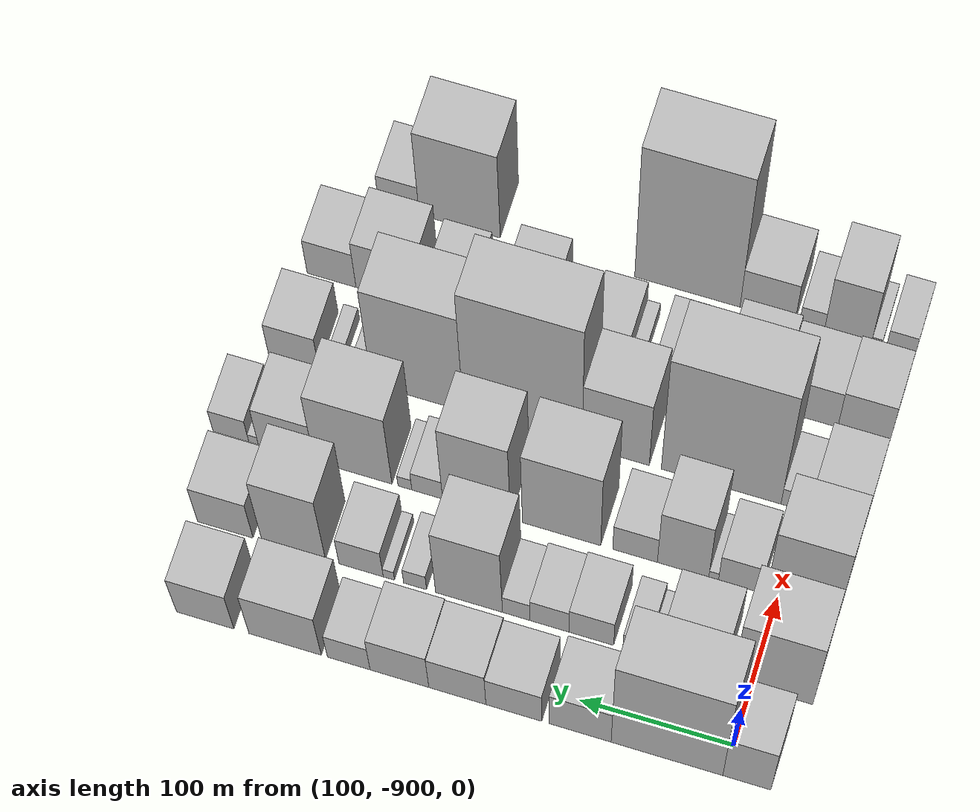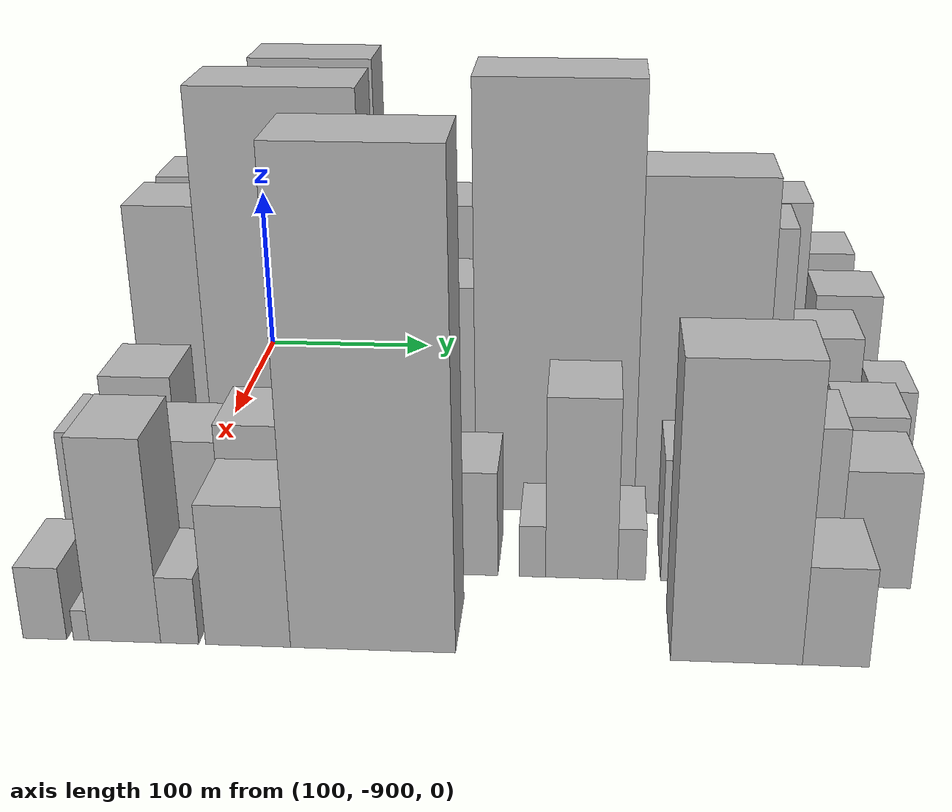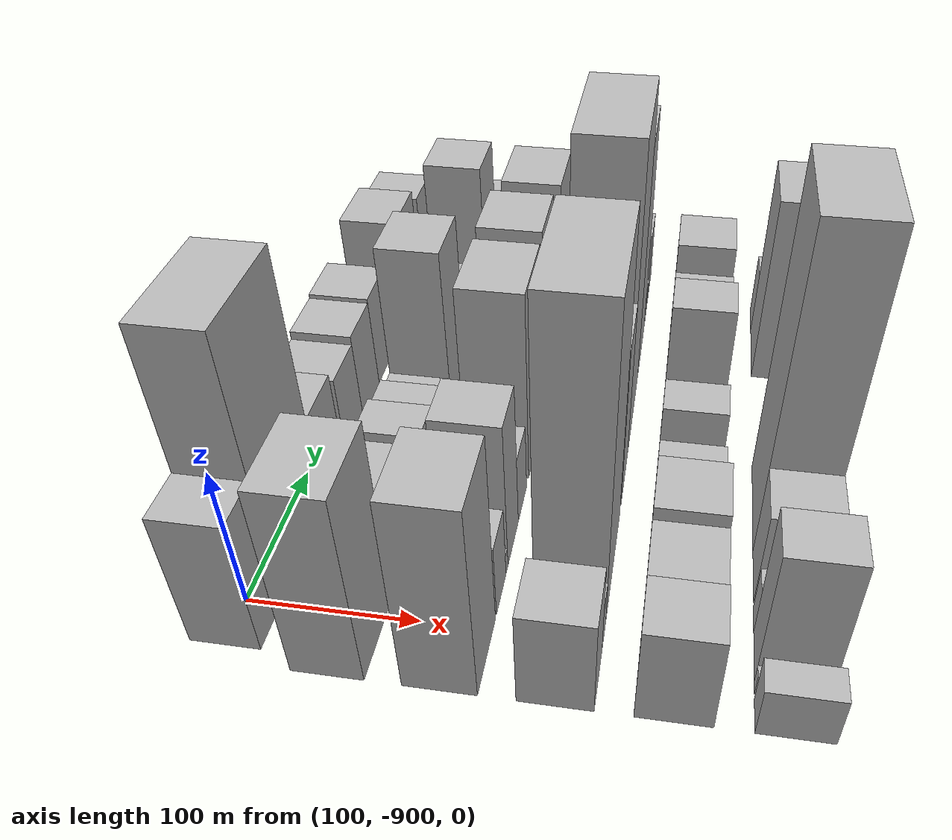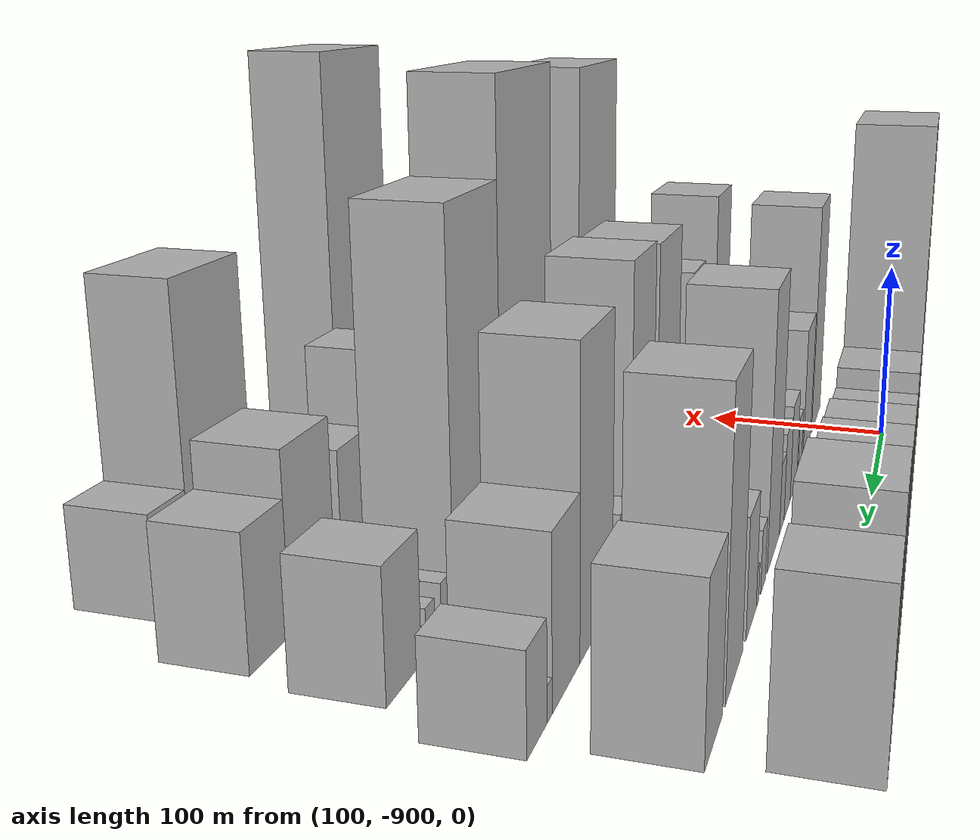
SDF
<sdf version="1.6">
 <world name="default">
  <model name="building_1">
   <static>1</static>
   <pose>100.0000 -914.4034 0 0.000000 0.000000 0.000000</pose>
   <link name="link">
    <pose>0 0 48.00 0 0 0</pose>
    <collision name="collision"><geometry><box><size>40.0000 31.1931 96.0000</size></box></geometry></collision>
    <visual name="visual">
     <cast_shadows>0</cast_shadows>
     <geometry><box><size>40.0000 31.1931 96.0000</size></box></geometry>
     <material>
      <script>
       <uri>model://HANNAS_wall/materials/scripts</uri>
       <uri>model://HANNAS_wall/materials/textures</uri>
       <name>vrc/HANNAS_wall</name>
      </script>
     </material>
    </visual>
   </link>
  </model>
  <model name="building_2">
   <static>1</static>
   <pose>100.0000 -862.4962 0 0.000000 0.000000 0.000000</pose>
   <link name="link">
    <pose>0 0 94.50 0 0 0</pose>
    <collision name="collision"><geometry><box><size>40.0000 72.6214 189.0000</size></box></geometry></collision>
    <visual name="visual">
     <cast_shadows>0</cast_shadows>
     <geometry><box><size>40.0000 72.6214 189.0000</size></box></geometry>
     <material>
      <script>
       <uri>model://HANNAS_wall/materials/scripts</uri>
       <uri>model://HANNAS_wall/materials/textures</uri>
       <name>vrc/HANNAS_wall</name>
      </script>
     </material>
    </visual>
   </link>
  </model>
  <model name="building_3">
   <static>1</static>
   <pose>100.0000 -806.0495 0 0.000000 0.000000 0.000000</pose>
   <link name="link">
    <pose>0 0 36.00 0 0 0</pose>
    <collision name="collision"><geometry><box><size>40.0000 40.2719 72.0000</size></box></geometry></collision>
    <visual name="visual">
     <cast_shadows>0</cast_shadows>
     <geometry><box><size>40.0000 40.2719 72.0000</size></box></geometry>
     <material>
      <script>
       <uri>model://HANNAS_wall/materials/scripts</uri>
       <uri>model://HANNAS_wall/materials/textures</uri>
       <name>vrc/HANNAS_wall</name>
      </script>
     </material>
    </visual>
   </link>
  </model>
  <model name="building_4">
   <static>1</static>
   <pose>100.0000 -762.6138 0 0.000000 0.000000 0.000000</pose>
   <link name="link">
    <pose>0 0 31.50 0 0 0</pose>
    <collision name="collision"><geometry><box><size>40.0000 36.5996 63.0000</size></box></geometry></collision>
    <visual name="visual">
     <cast_shadows>0</cast_shadows>
     <geometry><box><size>40.0000 36.5996 63.0000</size></box></geometry>
     <material>
      <script>
       <uri>model://HANNAS_wall/materials/scripts</uri>
       <uri>model://HANNAS_wall/materials/textures</uri>
       <name>vrc/HANNAS_wall</name>
      </script>
     </material>
    </visual>
   </link>
  </model>
  <model name="building_5">
   <static>1</static>
   <pose>100.0000 -725.5601 0 0.000000 0.000000 0.000000</pose>
   <link name="link">
    <pose>0 0 34.50 0 0 0</pose>
    <collision name="collision"><geometry><box><size>40.0000 37.5077 69.0000</size></box></geometry></collision>
    <visual name="visual">
     <cast_shadows>0</cast_shadows>
     <geometry><box><size>40.0000 37.5077 69.0000</size></box></geometry>
     <material>
      <script>
       <uri>model://HANNAS_wall/materials/scripts</uri>
       <uri>model://HANNAS_wall/materials/textures</uri>
       <name>vrc/HANNAS_wall</name>
      </script>
     </material>
    </visual>
   </link>
  </model>
  <model name="building_6">
   <static>1</static>
   <pose>100.0000 -687.4740 0 0.000000 0.000000 0.000000</pose>
   <link name="link">
    <pose>0 0 36.00 0 0 0</pose>
    <collision name="collision"><geometry><box><size>40.0000 38.6645 72.0000</size></box></geometry></collision>
    <visual name="visual">
     <cast_shadows>0</cast_shadows>
     <geometry><box><size>40.0000 38.6645 72.0000</size></box></geometry>
     <material>
      <script>
       <uri>model://HANNAS_wall/materials/scripts</uri>
       <uri>model://HANNAS_wall/materials/textures</uri>
       <name>vrc/HANNAS_wall</name>
      </script>
     </material>
    </visual>
   </link>
  </model>
  <model name="building_7">
   <static>1</static>
   <pose>100.0000 -654.0015 0 0.000000 0.000000 0.000000</pose>
   <link name="link">
    <pose>0 0 25.50 0 0 0</pose>
    <collision name="collision"><geometry><box><size>40.0000 28.2803 51.0000</size></box></geometry></collision>
    <visual name="visual">
     <cast_shadows>0</cast_shadows>
     <geometry><box><size>40.0000 28.2803 51.0000</size></box></geometry>
     <material>
      <script>
       <uri>model://HANNAS_wall/materials/scripts</uri>
       <uri>model://HANNAS_wall/materials/textures</uri>
       <name>vrc/HANNAS_wall</name>
      </script>
     </material>
    </visual>
   </link>
  </model>
  <model name="building_8">
   <static>1</static>
   <pose>100.0000 -611.8724 0 0.000000 0.000000 0.000000</pose>
   <link name="link">
    <pose>0 0 43.50 0 0 0</pose>
    <collision name="collision"><geometry><box><size>40.0000 47.9779 87.0000</size></box></geometry></collision>
    <visual name="visual">
     <cast_shadows>0</cast_shadows>
     <geometry><box><size>40.0000 47.9779 87.0000</size></box></geometry>
     <material>
      <script>
       <uri>model://HANNAS_wall/materials/scripts</uri>
       <uri>model://HANNAS_wall/materials/textures</uri>
       <name>vrc/HANNAS_wall</name>
      </script>
     </material>
    </visual>
   </link>
  </model>
  <model name="building_9">
   <static>1</static>
   <pose>100.0000 -558.8258 0 0.000000 0.000000 0.000000</pose>
   <link name="link">
    <pose>0 0 37.50 0 0 0</pose>
    <collision name="collision"><geometry><box><size>40.0000 38.1154 75.0000</size></box></geometry></collision>
    <visual name="visual">
     <cast_shadows>0</cast_shadows>
     <geometry><box><size>40.0000 38.1154 75.0000</size></box></geometry>
     <material>
      <script>
       <uri>model://HANNAS_wall/materials/scripts</uri>
       <uri>model://HANNAS_wall/materials/textures</uri>
       <name>vrc/HANNAS_wall</name>
      </script>
     </material>
    </visual>
   </link>
  </model>
  <model name="building_55">
   <static>1</static>
   <pose>160.0000 -914.0435 0 0.000000 0.000000 0.000000</pose>
   <link name="link">
    <pose>0 0 67.50 0 0 0</pose>
    <collision name="collision"><geometry><box><size>40.0000 51.9129 135.0000</size></box></geometry></collision>
    <visual name="visual">
     <cast_shadows>0</cast_shadows>
     <geometry><box><size>40.0000 51.9129 135.0000</size></box></geometry>
     <material>
      <script>
       <uri>model://HANNAS_wall/materials/scripts</uri>
       <uri>model://HANNAS_wall/materials/textures</uri>
       <name>vrc/HANNAS_wall</name>
      </script>
     </material>
    </visual>
   </link>
  </model>
  <model name="building_56">
   <static>1</static>
   <pose>160.0000 -861.3573 0 0.000000 0.000000 0.000000</pose>
   <link name="link">
    <pose>0 0 37.50 0 0 0</pose>
    <collision name="collision"><geometry><box><size>40.0000 41.4595 75.0000</size></box></geometry></collision>
    <visual name="visual">
     <cast_shadows>0</cast_shadows>
     <geometry><box><size>40.0000 41.4595 75.0000</size></box></geometry>
     <material>
      <script>
       <uri>model://HANNAS_wall/materials/scripts</uri>
       <uri>model://HANNAS_wall/materials/textures</uri>
       <name>vrc/HANNAS_wall</name>
      </script>
     </material>
    </visual>
   </link>
  </model>
  <model name="building_57">
   <static>1</static>
   <pose>160.0000 -836.5310 0 0.000000 0.000000 0.000000</pose>
   <link name="link">
    <pose>0 0 9.00 0 0 0</pose>
    <collision name="collision"><geometry><box><size>40.0000 8.1931 18.0000</size></box></geometry></collision>
    <visual name="visual">
     <cast_shadows>0</cast_shadows>
     <geometry><box><size>40.0000 8.1931 18.0000</size></box></geometry>
     <material>
      <script>
       <uri>model://HANNAS_wall/materials/scripts</uri>
       <uri>model://HANNAS_wall/materials/textures</uri>
       <name>vrc/HANNAS_wall</name>
      </script>
     </material>
    </visual>
   </link>
  </model>
  <model name="building_58">
   <static>1</static>
   <pose>160.0000 -824.1081 0 0.000000 0.000000 0.000000</pose>
   <link name="link">
    <pose>0 0 16.50 0 0 0</pose>
    <collision name="collision"><geometry><box><size>40.0000 16.6528 33.0000</size></box></geometry></collision>
    <visual name="visual">
     <cast_shadows>0</cast_shadows>
     <geometry><box><size>40.0000 16.6528 33.0000</size></box></geometry>
     <material>
      <script>
       <uri>model://HANNAS_wall/materials/scripts</uri>
       <uri>model://HANNAS_wall/materials/textures</uri>
       <name>vrc/HANNAS_wall</name>
      </script>
     </material>
    </visual>
   </link>
  </model>
  <model name="building_59">
   <static>1</static>
   <pose>160.0000 -795.0810 0 0.000000 0.000000 0.000000</pose>
   <link name="link">
    <pose>0 0 25.50 0 0 0</pose>
    <collision name="collision"><geometry><box><size>40.0000 29.4013 51.0000</size></box></geometry></collision>
    <visual name="visual">
     <cast_shadows>0</cast_shadows>
     <geometry><box><size>40.0000 29.4013 51.0000</size></box></geometry>
     <material>
      <script>
       <uri>model://HANNAS_wall/materials/scripts</uri>
       <uri>model://HANNAS_wall/materials/textures</uri>
       <name>vrc/HANNAS_wall</name>
      </script>
     </material>
    </visual>
   </link>
  </model>
  <model name="building_60">
   <static>1</static>
   <pose>160.0000 -767.4898 0 0.000000 0.000000 0.000000</pose>
   <link name="link">
    <pose>0 0 22.50 0 0 0</pose>
    <collision name="collision"><geometry><box><size>40.0000 25.7810 45.0000</size></box></geometry></collision>
    <visual name="visual">
     <cast_shadows>0</cast_shadows>
     <geometry><box><size>40.0000 25.7810 45.0000</size></box></geometry>
     <material>
      <script>
       <uri>model://HANNAS_wall/materials/scripts</uri>
       <uri>model://HANNAS_wall/materials/textures</uri>
       <name>vrc/HANNAS_wall</name>
      </script>
     </material>
    </visual>
   </link>
  </model>
  <model name="building_61">
   <static>1</static>
   <pose>160.0000 -745.5431 0 0.000000 0.000000 0.000000</pose>
   <link name="link">
    <pose>0 0 18.00 0 0 0</pose>
    <collision name="collision"><geometry><box><size>40.0000 18.1123 36.0000</size></box></geometry></collision>
    <visual name="visual">
     <cast_shadows>0</cast_shadows>
     <geometry><box><size>40.0000 18.1123 36.0000</size></box></geometry>
     <material>
      <script>
       <uri>model://HANNAS_wall/materials/scripts</uri>
       <uri>model://HANNAS_wall/materials/textures</uri>
       <name>vrc/HANNAS_wall</name>
      </script>
     </material>
    </visual>
   </link>
  </model>
  <model name="building_62">
   <static>1</static>
   <pose>160.0000 -714.3641 0 0.000000 0.000000 0.000000</pose>
   <link name="link">
    <pose>0 0 66.00 0 0 0</pose>
    <collision name="collision"><geometry><box><size>40.0000 44.2459 132.0000</size></box></geometry></collision>
    <visual name="visual">
     <cast_shadows>0</cast_shadows>
     <geometry><box><size>40.0000 44.2459 132.0000</size></box></geometry>
     <material>
      <script>
       <uri>model://HANNAS_wall/materials/scripts</uri>
       <uri>model://HANNAS_wall/materials/textures</uri>
       <name>vrc/HANNAS_wall</name>
      </script>
     </material>
    </visual>
   </link>
  </model>
  <model name="building_63">
   <static>1</static>
   <pose>160.0000 -678.5978 0 0.000000 0.000000 0.000000</pose>
   <link name="link">
    <pose>0 0 15.00 0 0 0</pose>
    <collision name="collision"><geometry><box><size>40.0000 15.2867 30.0000</size></box></geometry></collision>
    <visual name="visual">
     <cast_shadows>0</cast_shadows>
     <geometry><box><size>40.0000 15.2867 30.0000</size></box></geometry>
     <material>
      <script>
       <uri>model://HANNAS_wall/materials/scripts</uri>
       <uri>model://HANNAS_wall/materials/textures</uri>
       <name>vrc/HANNAS_wall</name>
      </script>
     </material>
    </visual>
   </link>
  </model>
  <model name="building_64">
   <static>1</static>
   <pose>160.0000 -661.1857 0 0.000000 0.000000 0.000000</pose>
   <link name="link">
    <pose>0 0 9.00 0 0 0</pose>
    <collision name="collision"><geometry><box><size>40.0000 7.5375 18.0000</size></box></geometry></collision>
    <visual name="visual">
     <cast_shadows>0</cast_shadows>
     <geometry><box><size>40.0000 7.5375 18.0000</size></box></geometry>
     <material>
      <script>
       <uri>model://HANNAS_wall/materials/scripts</uri>
       <uri>model://HANNAS_wall/materials/textures</uri>
       <name>vrc/HANNAS_wall</name>
      </script>
     </material>
    </visual>
   </link>
  </model>
  <model name="building_65">
   <static>1</static>
   <pose>160.0000 -642.7018 0 0.000000 0.000000 0.000000</pose>
   <link name="link">
    <pose>0 0 27.00 0 0 0</pose>
    <collision name="collision"><geometry><box><size>40.0000 29.4303 54.0000</size></box></geometry></collision>
    <visual name="visual">
     <cast_shadows>0</cast_shadows>
     <geometry><box><size>40.0000 29.4303 54.0000</size></box></geometry>
     <material>
      <script>
       <uri>model://HANNAS_wall/materials/scripts</uri>
       <uri>model://HANNAS_wall/materials/textures</uri>
       <name>vrc/HANNAS_wall</name>
      </script>
     </material>
    </visual>
   </link>
  </model>
  <model name="building_66">
   <static>1</static>
   <pose>160.0000 -597.7879 0 0.000000 0.000000 0.000000</pose>
   <link name="link">
    <pose>0 0 63.00 0 0 0</pose>
    <collision name="collision"><geometry><box><size>40.0000 42.3975 126.0000</size></box></geometry></collision>
    <visual name="visual">
     <cast_shadows>0</cast_shadows>
     <geometry><box><size>40.0000 42.3975 126.0000</size></box></geometry>
     <material>
      <script>
       <uri>model://HANNAS_wall/materials/scripts</uri>
       <uri>model://HANNAS_wall/materials/textures</uri>
       <name>vrc/HANNAS_wall</name>
      </script>
     </material>
    </visual>
   </link>
  </model>
  <model name="building_67">
   <static>1</static>
   <pose>160.0000 -552.0326 0 0.000000 0.000000 0.000000</pose>
   <link name="link">
    <pose>0 0 36.00 0 0 0</pose>
    <collision name="collision"><geometry><box><size>40.0000 37.1131 72.0000</size></box></geometry></collision>
    <visual name="visual">
     <cast_shadows>0</cast_shadows>
     <geometry><box><size>40.0000 37.1131 72.0000</size></box></geometry>
     <material>
      <script>
       <uri>model://HANNAS_wall/materials/scripts</uri>
       <uri>model://HANNAS_wall/materials/textures</uri>
       <name>vrc/HANNAS_wall</name>
      </script>
     </material>
    </visual>
   </link>
  </model>
  <model name="building_108">
   <static>1</static>
   <pose>220.0000 -916.1201 0 0.000000 0.000000 0.000000</pose>
   <link name="link">
    <pose>0 0 69.00 0 0 0</pose>
    <collision name="collision"><geometry><box><size>40.0000 47.7597 138.0000</size></box></geometry></collision>
    <visual name="visual">
     <cast_shadows>0</cast_shadows>
     <geometry><box><size>40.0000 47.7597 138.0000</size></box></geometry>
     <material>
      <script>
       <uri>model://HANNAS_wall/materials/scripts</uri>
       <uri>model://HANNAS_wall/materials/textures</uri>
       <name>vrc/HANNAS_wall</name>
      </script>
     </material>
    </visual>
   </link>
  </model>
  <model name="building_109">
   <static>1</static>
   <pose>220.0000 -875.0821 0 0.000000 0.000000 0.000000</pose>
   <link name="link">
    <pose>0 0 27.00 0 0 0</pose>
    <collision name="collision"><geometry><box><size>40.0000 28.3164 54.0000</size></box></geometry></collision>
    <visual name="visual">
     <cast_shadows>0</cast_shadows>
     <geometry><box><size>40.0000 28.3164 54.0000</size></box></geometry>
     <material>
      <script>
       <uri>model://HANNAS_wall/materials/scripts</uri>
       <uri>model://HANNAS_wall/materials/textures</uri>
       <name>vrc/HANNAS_wall</name>
      </script>
     </material>
    </visual>
   </link>
  </model>
  <model name="building_110">
   <static>1</static>
   <pose>220.0000 -857.7236 0 0.000000 0.000000 0.000000</pose>
   <link name="link">
    <pose>0 0 7.50 0 0 0</pose>
    <collision name="collision"><geometry><box><size>40.0000 6.4006 15.0000</size></box></geometry></collision>
    <visual name="visual">
     <cast_shadows>0</cast_shadows>
     <geometry><box><size>40.0000 6.4006 15.0000</size></box></geometry>
     <material>
      <script>
       <uri>model://HANNAS_wall/materials/scripts</uri>
       <uri>model://HANNAS_wall/materials/textures</uri>
       <name>vrc/HANNAS_wall</name>
      </script>
     </material>
    </visual>
   </link>
  </model>
  <model name="building_111">
   <static>1</static>
   <pose>220.0000 -837.5301 0 0.000000 0.000000 0.000000</pose>
   <link name="link">
    <pose>0 0 54.00 0 0 0</pose>
    <collision name="collision"><geometry><box><size>40.0000 33.9863 108.0000</size></box></geometry></collision>
    <visual name="visual">
     <cast_shadows>0</cast_shadows>
     <geometry><box><size>40.0000 33.9863 108.0000</size></box></geometry>
     <material>
      <script>
       <uri>model://HANNAS_wall/materials/scripts</uri>
       <uri>model://HANNAS_wall/materials/textures</uri>
       <name>vrc/HANNAS_wall</name>
      </script>
     </material>
    </visual>
   </link>
  </model>
  <model name="building_112">
   <static>1</static>
   <pose>220.0000 -805.7891 0 0.000000 0.000000 0.000000</pose>
   <link name="link">
    <pose>0 0 25.50 0 0 0</pose>
    <collision name="collision"><geometry><box><size>40.0000 29.4956 51.0000</size></box></geometry></collision>
    <visual name="visual">
     <cast_shadows>0</cast_shadows>
     <geometry><box><size>40.0000 29.4956 51.0000</size></box></geometry>
     <material>
      <script>
       <uri>model://HANNAS_wall/materials/scripts</uri>
       <uri>model://HANNAS_wall/materials/textures</uri>
       <name>vrc/HANNAS_wall</name>
      </script>
     </material>
    </visual>
   </link>
  </model>
  <model name="building_113">
   <static>1</static>
   <pose>220.0000 -757.0561 0 0.000000 0.000000 0.000000</pose>
   <link name="link">
    <pose>0 0 70.50 0 0 0</pose>
    <collision name="collision"><geometry><box><size>40.0000 51.9704 141.0000</size></box></geometry></collision>
    <visual name="visual">
     <cast_shadows>0</cast_shadows>
     <geometry><box><size>40.0000 51.9704 141.0000</size></box></geometry>
     <material>
      <script>
       <uri>model://HANNAS_wall/materials/scripts</uri>
       <uri>model://HANNAS_wall/materials/textures</uri>
       <name>vrc/HANNAS_wall</name>
      </script>
     </material>
    </visual>
   </link>
  </model>
  <model name="building_114">
   <static>1</static>
   <pose>220.0000 -700.4312 0 0.000000 0.000000 0.000000</pose>
   <link name="link">
    <pose>0 0 72.00 0 0 0</pose>
    <collision name="collision"><geometry><box><size>40.0000 45.2795 144.0000</size></box></geometry></collision>
    <visual name="visual">
     <cast_shadows>0</cast_shadows>
     <geometry><box><size>40.0000 45.2795 144.0000</size></box></geometry>
     <material>
      <script>
       <uri>model://HANNAS_wall/materials/scripts</uri>
       <uri>model://HANNAS_wall/materials/textures</uri>
       <name>vrc/HANNAS_wall</name>
      </script>
     </material>
    </visual>
   </link>
  </model>
  <model name="building_115">
   <static>1</static>
   <pose>220.0000 -667.5053 0 0.000000 0.000000 0.000000</pose>
   <link name="link">
    <pose>0 0 18.00 0 0 0</pose>
    <collision name="collision"><geometry><box><size>40.0000 20.5722 36.0000</size></box></geometry></collision>
    <visual name="visual">
     <cast_shadows>0</cast_shadows>
     <geometry><box><size>40.0000 20.5722 36.0000</size></box></geometry>
     <material>
      <script>
       <uri>model://HANNAS_wall/materials/scripts</uri>
       <uri>model://HANNAS_wall/materials/textures</uri>
       <name>vrc/HANNAS_wall</name>
      </script>
     </material>
    </visual>
   </link>
  </model>
  <model name="building_116">
   <static>1</static>
   <pose>220.0000 -652.5848 0 0.000000 0.000000 0.000000</pose>
   <link name="link">
    <pose>0 0 10.50 0 0 0</pose>
    <collision name="collision"><geometry><box><size>40.0000 9.2688 21.0000</size></box></geometry></collision>
    <visual name="visual">
     <cast_shadows>0</cast_shadows>
     <geometry><box><size>40.0000 9.2688 21.0000</size></box></geometry>
     <material>
      <script>
       <uri>model://HANNAS_wall/materials/scripts</uri>
       <uri>model://HANNAS_wall/materials/textures</uri>
       <name>vrc/HANNAS_wall</name>
      </script>
     </material>
    </visual>
   </link>
  </model>
  <model name="building_117">
   <static>1</static>
   <pose>220.0000 -617.8667 0 0.000000 0.000000 0.000000</pose>
   <link name="link">
    <pose>0 0 66.00 0 0 0</pose>
    <collision name="collision"><geometry><box><size>40.0000 52.1672 132.0000</size></box></geometry></collision>
    <visual name="visual">
     <cast_shadows>0</cast_shadows>
     <geometry><box><size>40.0000 52.1672 132.0000</size></box></geometry>
     <material>
      <script>
       <uri>model://HANNAS_wall/materials/scripts</uri>
       <uri>model://HANNAS_wall/materials/textures</uri>
       <name>vrc/HANNAS_wall</name>
      </script>
     </material>
    </visual>
   </link>
  </model>
  <model name="building_118">
   <static>1</static>
   <pose>220.0000 -572.9064 0 0.000000 0.000000 0.000000</pose>
   <link name="link">
    <pose>0 0 36.00 0 0 0</pose>
    <collision name="collision"><geometry><box><size>40.0000 37.7534 72.0000</size></box></geometry></collision>
    <visual name="visual">
     <cast_shadows>0</cast_shadows>
     <geometry><box><size>40.0000 37.7534 72.0000</size></box></geometry>
     <material>
      <script>
       <uri>model://HANNAS_wall/materials/scripts</uri>
       <uri>model://HANNAS_wall/materials/textures</uri>
       <name>vrc/HANNAS_wall</name>
      </script>
     </material>
    </visual>
   </link>
  </model>
  <model name="building_119">
   <static>1</static>
   <pose>220.0000 -550.8197 0 0.000000 0.000000 0.000000</pose>
   <link name="link">
    <pose>0 0 7.50 0 0 0</pose>
    <collision name="collision"><geometry><box><size>40.0000 6.4200 15.0000</size></box></geometry></collision>
    <visual name="visual">
     <cast_shadows>0</cast_shadows>
     <geometry><box><size>40.0000 6.4200 15.0000</size></box></geometry>
     <material>
      <script>
       <uri>model://HANNAS_wall/materials/scripts</uri>
       <uri>model://HANNAS_wall/materials/textures</uri>
       <name>vrc/HANNAS_wall</name>
      </script>
     </material>
    </visual>
   </link>
  </model>
  <model name="building_120">
   <static>1</static>
   <pose>220.0000 -535.5530 0 0.000000 0.000000 0.000000</pose>
   <link name="link">
    <pose>0 0 21.00 0 0 0</pose>
    <collision name="collision"><geometry><box><size>40.0000 24.1134 42.0000</size></box></geometry></collision>
    <visual name="visual">
     <cast_shadows>0</cast_shadows>
     <geometry><box><size>40.0000 24.1134 42.0000</size></box></geometry>
     <material>
      <script>
       <uri>model://HANNAS_wall/materials/scripts</uri>
       <uri>model://HANNAS_wall/materials/textures</uri>
       <name>vrc/HANNAS_wall</name>
      </script>
     </material>
    </visual>
   </link>
  </model>
  <model name="building_163">
   <static>1</static>
   <pose>280.0000 -921.9414 0 0.000000 0.000000 0.000000</pose>
   <link name="link">
    <pose>0 0 34.50 0 0 0</pose>
    <collision name="collision"><geometry><box><size>40.0000 36.1172 69.0000</size></box></geometry></collision>
    <visual name="visual">
     <cast_shadows>0</cast_shadows>
     <geometry><box><size>40.0000 36.1172 69.0000</size></box></geometry>
     <material>
      <script>
       <uri>model://HANNAS_wall/materials/scripts</uri>
       <uri>model://HANNAS_wall/materials/textures</uri>
       <name>vrc/HANNAS_wall</name>
      </script>
     </material>
    </visual>
   </link>
  </model>
  <model name="building_164">
   <static>1</static>
   <pose>280.0000 -894.3370 0 0.000000 0.000000 0.000000</pose>
   <link name="link">
    <pose>0 0 16.50 0 0 0</pose>
    <collision name="collision"><geometry><box><size>40.0000 19.0916 33.0000</size></box></geometry></collision>
    <visual name="visual">
     <cast_shadows>0</cast_shadows>
     <geometry><box><size>40.0000 19.0916 33.0000</size></box></geometry>
     <material>
      <script>
       <uri>model://HANNAS_wall/materials/scripts</uri>
       <uri>model://HANNAS_wall/materials/textures</uri>
       <name>vrc/HANNAS_wall</name>
      </script>
     </material>
    </visual>
   </link>
  </model>
  <model name="building_165">
   <static>1</static>
   <pose>280.0000 -845.0297 0 0.000000 0.000000 0.000000</pose>
   <link name="link">
    <pose>0 0 108.00 0 0 0</pose>
    <collision name="collision"><geometry><box><size>40.0000 79.5230 216.0000</size></box></geometry></collision>
    <visual name="visual">
     <cast_shadows>0</cast_shadows>
     <geometry><box><size>40.0000 79.5230 216.0000</size></box></geometry>
     <material>
      <script>
       <uri>model://HANNAS_wall/materials/scripts</uri>
       <uri>model://HANNAS_wall/materials/textures</uri>
       <name>vrc/HANNAS_wall</name>
      </script>
     </material>
    </visual>
   </link>
  </model>
  <model name="building_166">
   <static>1</static>
   <pose>280.0000 -774.8929 0 0.000000 0.000000 0.000000</pose>
   <link name="link">
    <pose>0 0 60.00 0 0 0</pose>
    <collision name="collision"><geometry><box><size>40.0000 44.7508 120.0000</size></box></geometry></collision>
    <visual name="visual">
     <cast_shadows>0</cast_shadows>
     <geometry><box><size>40.0000 44.7508 120.0000</size></box></geometry>
     <material>
      <script>
       <uri>model://HANNAS_wall/materials/scripts</uri>
       <uri>model://HANNAS_wall/materials/textures</uri>
       <name>vrc/HANNAS_wall</name>
      </script>
     </material>
    </visual>
   </link>
  </model>
  <model name="building_167">
   <static>1</static>
   <pose>280.0000 -712.6948 0 0.000000 0.000000 0.000000</pose>
   <link name="link">
    <pose>0 0 111.00 0 0 0</pose>
    <collision name="collision"><geometry><box><size>40.0000 79.6453 222.0000</size></box></geometry></collision>
    <visual name="visual">
     <cast_shadows>0</cast_shadows>
     <geometry><box><size>40.0000 79.6453 222.0000</size></box></geometry>
     <material>
      <script>
       <uri>model://HANNAS_wall/materials/scripts</uri>
       <uri>model://HANNAS_wall/materials/textures</uri>
       <name>vrc/HANNAS_wall</name>
      </script>
     </material>
    </visual>
   </link>
  </model>
  <model name="building_168">
   <static>1</static>
   <pose>280.0000 -641.8511 0 0.000000 0.000000 0.000000</pose>
   <link name="link">
    <pose>0 0 88.50 0 0 0</pose>
    <collision name="collision"><geometry><box><size>40.0000 62.0421 177.0000</size></box></geometry></collision>
    <visual name="visual">
     <cast_shadows>0</cast_shadows>
     <geometry><box><size>40.0000 62.0421 177.0000</size></box></geometry>
     <material>
      <script>
       <uri>model://HANNAS_wall/materials/scripts</uri>
       <uri>model://HANNAS_wall/materials/textures</uri>
       <name>vrc/HANNAS_wall</name>
      </script>
     </material>
    </visual>
   </link>
  </model>
  <model name="building_169">
   <static>1</static>
   <pose>280.0000 -601.7966 0 0.000000 0.000000 0.000000</pose>
   <link name="link">
    <pose>0 0 12.00 0 0 0</pose>
    <collision name="collision"><geometry><box><size>40.0000 10.0670 24.0000</size></box></geometry></collision>
    <visual name="visual">
     <cast_shadows>0</cast_shadows>
     <geometry><box><size>40.0000 10.0670 24.0000</size></box></geometry>
     <material>
      <script>
       <uri>model://HANNAS_wall/materials/scripts</uri>
       <uri>model://HANNAS_wall/materials/textures</uri>
       <name>vrc/HANNAS_wall</name>
      </script>
     </material>
    </visual>
   </link>
  </model>
  <model name="building_170">
   <static>1</static>
   <pose>280.0000 -584.9495 0 0.000000 0.000000 0.000000</pose>
   <link name="link">
    <pose>0 0 10.50 0 0 0</pose>
    <collision name="collision"><geometry><box><size>40.0000 9.6271 21.0000</size></box></geometry></collision>
    <visual name="visual">
     <cast_shadows>0</cast_shadows>
     <geometry><box><size>40.0000 9.6271 21.0000</size></box></geometry>
     <material>
      <script>
       <uri>model://HANNAS_wall/materials/scripts</uri>
       <uri>model://HANNAS_wall/materials/textures</uri>
       <name>vrc/HANNAS_wall</name>
      </script>
     </material>
    </visual>
   </link>
  </model>
  <model name="building_171">
   <static>1</static>
   <pose>280.0000 -558.0647 0 0.000000 0.000000 0.000000</pose>
   <link name="link">
    <pose>0 0 28.50 0 0 0</pose>
    <collision name="collision"><geometry><box><size>40.0000 34.1424 57.0000</size></box></geometry></collision>
    <visual name="visual">
     <cast_shadows>0</cast_shadows>
     <geometry><box><size>40.0000 34.1424 57.0000</size></box></geometry>
     <material>
      <script>
       <uri>model://HANNAS_wall/materials/scripts</uri>
       <uri>model://HANNAS_wall/materials/textures</uri>
       <name>vrc/HANNAS_wall</name>
      </script>
     </material>
    </visual>
   </link>
  </model>
  <model name="building_215">
   <static>1</static>
   <pose>340.0000 -922.7356 0 0.000000 0.000000 0.000000</pose>
   <link name="link">
    <pose>0 0 34.50 0 0 0</pose>
    <collision name="collision"><geometry><box><size>40.0000 34.5287 69.0000</size></box></geometry></collision>
    <visual name="visual">
     <cast_shadows>0</cast_shadows>
     <geometry><box><size>40.0000 34.5287 69.0000</size></box></geometry>
     <material>
      <script>
       <uri>model://HANNAS_wall/materials/scripts</uri>
       <uri>model://HANNAS_wall/materials/textures</uri>
       <name>vrc/HANNAS_wall</name>
      </script>
     </material>
    </visual>
   </link>
  </model>
  <model name="building_216">
   <static>1</static>
   <pose>340.0000 -886.0057 0 0.000000 0.000000 0.000000</pose>
   <link name="link">
    <pose>0 0 33.00 0 0 0</pose>
    <collision name="collision"><geometry><box><size>40.0000 38.9311 66.0000</size></box></geometry></collision>
    <visual name="visual">
     <cast_shadows>0</cast_shadows>
     <geometry><box><size>40.0000 38.9311 66.0000</size></box></geometry>
     <material>
      <script>
       <uri>model://HANNAS_wall/materials/scripts</uri>
       <uri>model://HANNAS_wall/materials/textures</uri>
       <name>vrc/HANNAS_wall</name>
      </script>
     </material>
    </visual>
   </link>
  </model>
  <model name="building_217">
   <static>1</static>
   <pose>340.0000 -847.2848 0 0.000000 0.000000 0.000000</pose>
   <link name="link">
    <pose>0 0 37.50 0 0 0</pose>
    <collision name="collision"><geometry><box><size>40.0000 38.5107 75.0000</size></box></geometry></collision>
    <visual name="visual">
     <cast_shadows>0</cast_shadows>
     <geometry><box><size>40.0000 38.5107 75.0000</size></box></geometry>
     <material>
      <script>
       <uri>model://HANNAS_wall/materials/scripts</uri>
       <uri>model://HANNAS_wall/materials/textures</uri>
       <name>vrc/HANNAS_wall</name>
      </script>
     </material>
    </visual>
   </link>
  </model>
  <model name="building_218">
   <static>1</static>
   <pose>340.0000 -817.3415 0 0.000000 0.000000 0.000000</pose>
   <link name="link">
    <pose>0 0 18.00 0 0 0</pose>
    <collision name="collision"><geometry><box><size>40.0000 21.3759 36.0000</size></box></geometry></collision>
    <visual name="visual">
     <cast_shadows>0</cast_shadows>
     <geometry><box><size>40.0000 21.3759 36.0000</size></box></geometry>
     <material>
      <script>
       <uri>model://HANNAS_wall/materials/scripts</uri>
       <uri>model://HANNAS_wall/materials/textures</uri>
       <name>vrc/HANNAS_wall</name>
      </script>
     </material>
    </visual>
   </link>
  </model>
  <model name="building_219">
   <static>1</static>
   <pose>340.0000 -795.1544 0 0.000000 0.000000 0.000000</pose>
   <link name="link">
    <pose>0 0 22.50 0 0 0</pose>
    <collision name="collision"><geometry><box><size>40.0000 22.9982 45.0000</size></box></geometry></collision>
    <visual name="visual">
     <cast_shadows>0</cast_shadows>
     <geometry><box><size>40.0000 22.9982 45.0000</size></box></geometry>
     <material>
      <script>
       <uri>model://HANNAS_wall/materials/scripts</uri>
       <uri>model://HANNAS_wall/materials/textures</uri>
       <name>vrc/HANNAS_wall</name>
      </script>
     </material>
    </visual>
   </link>
  </model>
  <model name="building_220">
   <static>1</static>
   <pose>340.0000 -770.2133 0 0.000000 0.000000 0.000000</pose>
   <link name="link">
    <pose>0 0 10.50 0 0 0</pose>
    <collision name="collision"><geometry><box><size>40.0000 8.8840 21.0000</size></box></geometry></collision>
    <visual name="visual">
     <cast_shadows>0</cast_shadows>
     <geometry><box><size>40.0000 8.8840 21.0000</size></box></geometry>
     <material>
      <script>
       <uri>model://HANNAS_wall/materials/scripts</uri>
       <uri>model://HANNAS_wall/materials/textures</uri>
       <name>vrc/HANNAS_wall</name>
      </script>
     </material>
    </visual>
   </link>
  </model>
  <model name="building_221">
   <static>1</static>
   <pose>340.0000 -751.6352 0 0.000000 0.000000 0.000000</pose>
   <link name="link">
    <pose>0 0 27.00 0 0 0</pose>
    <collision name="collision"><geometry><box><size>40.0000 28.2722 54.0000</size></box></geometry></collision>
    <visual name="visual">
     <cast_shadows>0</cast_shadows>
     <geometry><box><size>40.0000 28.2722 54.0000</size></box></geometry>
     <material>
      <script>
       <uri>model://HANNAS_wall/materials/scripts</uri>
       <uri>model://HANNAS_wall/materials/textures</uri>
       <name>vrc/HANNAS_wall</name>
      </script>
     </material>
    </visual>
   </link>
  </model>
  <model name="building_222">
   <static>1</static>
   <pose>340.0000 -721.3886 0 0.000000 0.000000 0.000000</pose>
   <link name="link">
    <pose>0 0 13.50 0 0 0</pose>
    <collision name="collision"><geometry><box><size>40.0000 12.2209 27.0000</size></box></geometry></collision>
    <visual name="visual">
     <cast_shadows>0</cast_shadows>
     <geometry><box><size>40.0000 12.2209 27.0000</size></box></geometry>
     <material>
      <script>
       <uri>model://HANNAS_wall/materials/scripts</uri>
       <uri>model://HANNAS_wall/materials/textures</uri>
       <name>vrc/HANNAS_wall</name>
      </script>
     </material>
    </visual>
   </link>
  </model>
  <model name="building_223">
   <static>1</static>
   <pose>340.0000 -698.5658 0 0.000000 0.000000 0.000000</pose>
   <link name="link">
    <pose>0 0 46.50 0 0 0</pose>
    <collision name="collision"><geometry><box><size>40.0000 33.4246 93.0000</size></box></geometry></collision>
    <visual name="visual">
     <cast_shadows>0</cast_shadows>
     <geometry><box><size>40.0000 33.4246 93.0000</size></box></geometry>
     <material>
      <script>
       <uri>model://HANNAS_wall/materials/scripts</uri>
       <uri>model://HANNAS_wall/materials/textures</uri>
       <name>vrc/HANNAS_wall</name>
      </script>
     </material>
    </visual>
   </link>
  </model>
  <model name="building_224">
   <static>1</static>
   <pose>340.0000 -675.3949 0 0.000000 0.000000 0.000000</pose>
   <link name="link">
    <pose>0 0 13.50 0 0 0</pose>
    <collision name="collision"><geometry><box><size>40.0000 12.9172 27.0000</size></box></geometry></collision>
    <visual name="visual">
     <cast_shadows>0</cast_shadows>
     <geometry><box><size>40.0000 12.9172 27.0000</size></box></geometry>
     <material>
      <script>
       <uri>model://HANNAS_wall/materials/scripts</uri>
       <uri>model://HANNAS_wall/materials/textures</uri>
       <name>vrc/HANNAS_wall</name>
      </script>
     </material>
    </visual>
   </link>
  </model>
  <model name="building_225">
   <static>1</static>
   <pose>340.0000 -645.9857 0 0.000000 0.000000 0.000000</pose>
   <link name="link">
    <pose>0 0 31.50 0 0 0</pose>
    <collision name="collision"><geometry><box><size>40.0000 31.9013 63.0000</size></box></geometry></collision>
    <visual name="visual">
     <cast_shadows>0</cast_shadows>
     <geometry><box><size>40.0000 31.9013 63.0000</size></box></geometry>
     <material>
      <script>
       <uri>model://HANNAS_wall/materials/scripts</uri>
       <uri>model://HANNAS_wall/materials/textures</uri>
       <name>vrc/HANNAS_wall</name>
      </script>
     </material>
    </visual>
   </link>
  </model>
  <model name="building_226">
   <static>1</static>
   <pose>340.0000 -601.9406 0 0.000000 0.000000 0.000000</pose>
   <link name="link">
    <pose>0 0 40.50 0 0 0</pose>
    <collision name="collision"><geometry><box><size>40.0000 42.1889 81.0000</size></box></geometry></collision>
    <visual name="visual">
     <cast_shadows>0</cast_shadows>
     <geometry><box><size>40.0000 42.1889 81.0000</size></box></geometry>
     <material>
      <script>
       <uri>model://HANNAS_wall/materials/scripts</uri>
       <uri>model://HANNAS_wall/materials/textures</uri>
       <name>vrc/HANNAS_wall</name>
      </script>
     </material>
    </visual>
   </link>
  </model>
  <model name="building_227">
   <static>1</static>
   <pose>340.0000 -564.2070 0 0.000000 0.000000 0.000000</pose>
   <link name="link">
    <pose>0 0 30.00 0 0 0</pose>
    <collision name="collision"><geometry><box><size>40.0000 33.2783 60.0000</size></box></geometry></collision>
    <visual name="visual">
     <cast_shadows>0</cast_shadows>
     <geometry><box><size>40.0000 33.2783 60.0000</size></box></geometry>
     <material>
      <script>
       <uri>model://HANNAS_wall/materials/scripts</uri>
       <uri>model://HANNAS_wall/materials/textures</uri>
       <name>vrc/HANNAS_wall</name>
      </script>
     </material>
    </visual>
   </link>
  </model>
  <model name="building_280">
   <static>1</static>
   <pose>400.0000 -930.3884 0 0.000000 0.000000 0.000000</pose>
   <link name="link">
    <pose>0 0 18.00 0 0 0</pose>
    <collision name="collision"><geometry><box><size>40.0000 19.2233 36.0000</size></box></geometry></collision>
    <visual name="visual">
     <cast_shadows>0</cast_shadows>
     <geometry><box><size>40.0000 19.2233 36.0000</size></box></geometry>
     <material>
      <script>
       <uri>model://HANNAS_wall/materials/scripts</uri>
       <uri>model://HANNAS_wall/materials/textures</uri>
       <name>vrc/HANNAS_wall</name>
      </script>
     </material>
    </visual>
   </link>
  </model>
  <model name="building_281">
   <static>1</static>
   <pose>400.0000 -914.3119 0 0.000000 0.000000 0.000000</pose>
   <link name="link">
    <pose>0 0 7.50 0 0 0</pose>
    <collision name="collision"><geometry><box><size>40.0000 6.9297 15.0000</size></box></geometry></collision>
    <visual name="visual">
     <cast_shadows>0</cast_shadows>
     <geometry><box><size>40.0000 6.9297 15.0000</size></box></geometry>
     <material>
      <script>
       <uri>model://HANNAS_wall/materials/scripts</uri>
       <uri>model://HANNAS_wall/materials/textures</uri>
       <name>vrc/HANNAS_wall</name>
      </script>
     </material>
    </visual>
   </link>
  </model>
  <model name="building_282">
   <static>1</static>
   <pose>400.0000 -895.1298 0 0.000000 0.000000 0.000000</pose>
   <link name="link">
    <pose>0 0 49.50 0 0 0</pose>
    <collision name="collision"><geometry><box><size>40.0000 31.4344 99.0000</size></box></geometry></collision>
    <visual name="visual">
     <cast_shadows>0</cast_shadows>
     <geometry><box><size>40.0000 31.4344 99.0000</size></box></geometry>
     <material>
      <script>
       <uri>model://HANNAS_wall/materials/scripts</uri>
       <uri>model://HANNAS_wall/materials/textures</uri>
       <name>vrc/HANNAS_wall</name>
      </script>
     </material>
    </visual>
   </link>
  </model>
  <model name="building_283">
   <static>1</static>
   <pose>400.0000 -871.0902 0 0.000000 0.000000 0.000000</pose>
   <link name="link">
    <pose>0 0 16.50 0 0 0</pose>
    <collision name="collision"><geometry><box><size>40.0000 16.6448 33.0000</size></box></geometry></collision>
    <visual name="visual">
     <cast_shadows>0</cast_shadows>
     <geometry><box><size>40.0000 16.6448 33.0000</size></box></geometry>
     <material>
      <script>
       <uri>model://HANNAS_wall/materials/scripts</uri>
       <uri>model://HANNAS_wall/materials/textures</uri>
       <name>vrc/HANNAS_wall</name>
      </script>
     </material>
    </visual>
   </link>
  </model>
  <model name="building_284">
   <static>1</static>
   <pose>400.0000 -841.2622 0 0.000000 0.000000 0.000000</pose>
   <link name="link">
    <pose>0 0 34.50 0 0 0</pose>
    <collision name="collision"><geometry><box><size>40.0000 37.0113 69.0000</size></box></geometry></collision>
    <visual name="visual">
     <cast_shadows>0</cast_shadows>
     <geometry><box><size>40.0000 37.0113 69.0000</size></box></geometry>
     <material>
      <script>
       <uri>model://HANNAS_wall/materials/scripts</uri>
       <uri>model://HANNAS_wall/materials/textures</uri>
       <name>vrc/HANNAS_wall</name>
      </script>
     </material>
    </visual>
   </link>
  </model>
  <model name="building_285">
   <static>1</static>
   <pose>400.0000 -787.1593 0 0.000000 0.000000 0.000000</pose>
   <link name="link">
    <pose>0 0 112.50 0 0 0</pose>
    <collision name="collision"><geometry><box><size>40.0000 71.1944 225.0000</size></box></geometry></collision>
    <visual name="visual">
     <cast_shadows>0</cast_shadows>
     <geometry><box><size>40.0000 71.1944 225.0000</size></box></geometry>
     <material>
      <script>
       <uri>model://HANNAS_wall/materials/scripts</uri>
       <uri>model://HANNAS_wall/materials/textures</uri>
       <name>vrc/HANNAS_wall</name>
      </script>
     </material>
    </visual>
   </link>
  </model>
  <model name="building_286">
   <static>1</static>
   <pose>400.0000 -632.4085 0 0.000000 0.000000 0.000000</pose>
   <link name="link">
    <pose>0 0 70.50 0 0 0</pose>
    <collision name="collision"><geometry><box><size>40.0000 55.4358 141.0000</size></box></geometry></collision>
    <visual name="visual">
     <cast_shadows>0</cast_shadows>
     <geometry><box><size>40.0000 55.4358 141.0000</size></box></geometry>
     <material>
      <script>
       <uri>model://HANNAS_wall/materials/scripts</uri>
       <uri>model://HANNAS_wall/materials/textures</uri>
       <name>vrc/HANNAS_wall</name>
      </script>
     </material>
    </visual>
   </link>
  </model>
  <model name="building_287">
   <static>1</static>
   <pose>400.0000 -590.7180 0 0.000000 0.000000 0.000000</pose>
   <link name="link">
    <pose>0 0 24.00 0 0 0</pose>
    <collision name="collision"><geometry><box><size>40.0000 27.9453 48.0000</size></box></geometry></collision>
    <visual name="visual">
     <cast_shadows>0</cast_shadows>
     <geometry><box><size>40.0000 27.9453 48.0000</size></box></geometry>
     <material>
      <script>
       <uri>model://HANNAS_wall/materials/scripts</uri>
       <uri>model://HANNAS_wall/materials/textures</uri>
       <name>vrc/HANNAS_wall</name>
      </script>
     </material>
    </visual>
   </link>
  </model>
 </world>
</sdf>
